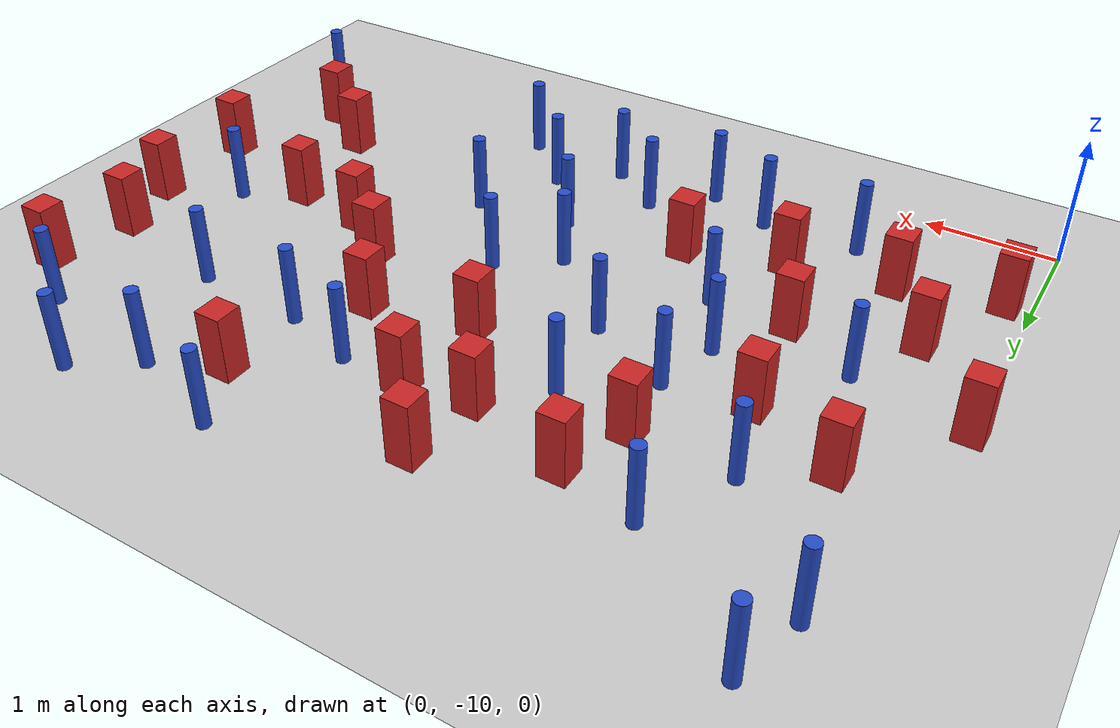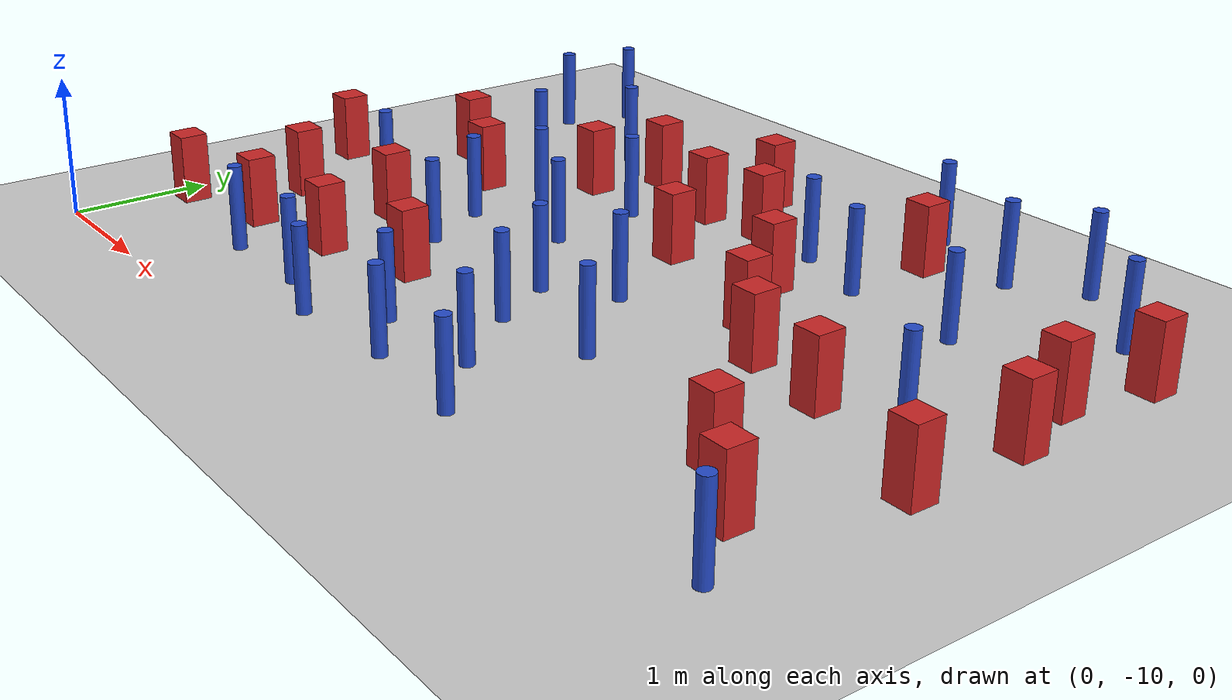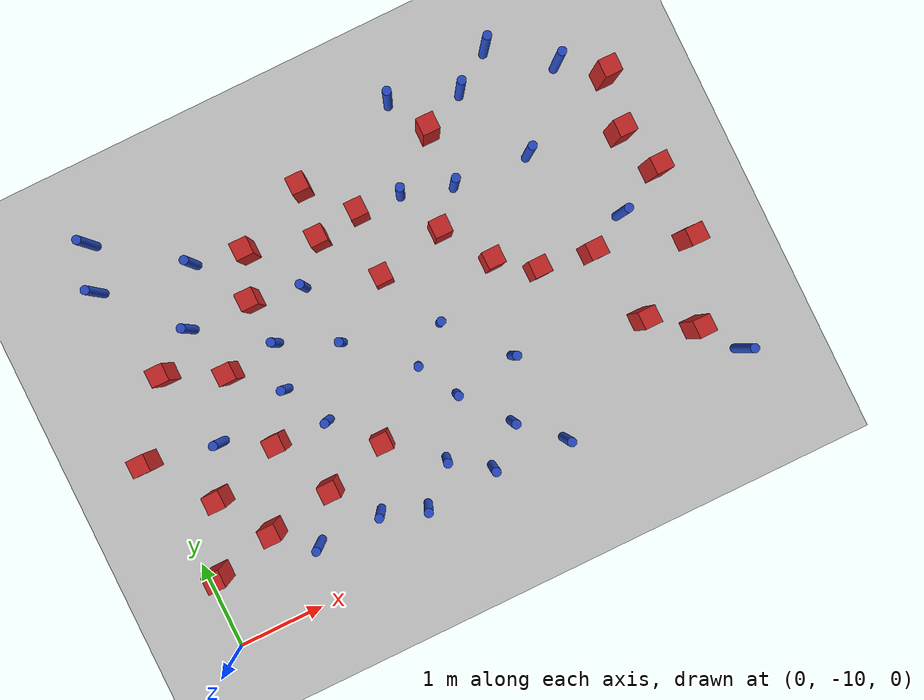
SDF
<sdf version="1.6">
 <world name="default">
  <model name="ground_plane">
   <static>1</static>
   <link name="link">
    <collision name="collision">
     <geometry><plane><normal>0 0 1</normal><size>100 100</size></plane></geometry>
     <surface><friction><ode><mu>100</mu><mu2>50</mu2></ode></friction></surface>
    </collision>
    <visual name="visual">
     <cast_shadows>0</cast_shadows>
     <geometry><plane><normal>0 0 1</normal><size>100 100</size></plane></geometry>
     <material>
      <ambient>1.0 1.0 1.0 1.0</ambient>
      <diffuse>0.8 0.8 0.8 1.0</diffuse>
      <specular>0.01 0.01 0.01 1.000000</specular>
     </material>
    </visual>
   </link>
  </model>
  <model name="square_post_obstacle7">
   <static>true</static>
   <pose>3.2556750321 -6.27537954288 -6.11067671241e-07 -5.50515727128e-06 -8.79689657224e-07 2.37013304536e-05</pose>
   <link name="link">
    <pose>0 0 0.25 0 -0 0</pose>
    <inertial>
     <mass>100</mass>
     <inertia>
      <ixx>0.166667</ixx>
      <ixy>0</ixy>
      <ixz>0</ixz>
      <iyy>0.166667</iyy>
      <iyz>0</iyz>
      <izz>0.166667</izz>
     </inertia>
    </inertial>
    <collision name="collision"><geometry><box><size>.2 .2 .5</size></box></geometry></collision>
    <visual name="visual">
     <geometry><box><size>.2 .2 .5</size></box></geometry>
     <material>
      <script><name>Gazebo/Red</name><uri>file://media/materials/scripts/gazebo.material</uri></script>
     </material>
    </visual>
   </link>
  </model>
  <model name="square_post_obstacle10">
   <static>true</static>
   <pose>6.32868239896 -6.0934810829 -6.11067671241e-07 -5.50515727128e-06 -8.79689657224e-07 2.37013304536e-05</pose>
   <link name="link">
    <pose>0 0 0.25 0 -0 0</pose>
    <inertial>
     <mass>100</mass>
     <inertia>
      <ixx>0.166667</ixx>
      <ixy>0</ixy>
      <ixz>0</ixz>
      <iyy>0.166667</iyy>
      <iyz>0</iyz>
      <izz>0.166667</izz>
     </inertia>
    </inertial>
    <collision name="collision"><geometry><box><size>.2 .2 .5</size></box></geometry></collision>
    <visual name="visual">
     <geometry><box><size>.2 .2 .5</size></box></geometry>
     <material>
      <script><name>Gazebo/Red</name><uri>file://media/materials/scripts/gazebo.material</uri></script>
     </material>
    </visual>
   </link>
  </model>
  <model name="pole_obstacle10">
   <static>true</static>
   <pose>4.07829547664 -5.33456093465 -9.47619616065e-06 5.49618799737e-07 2.36310414037e-07 -1.55090534814e-07</pose>
   <link name="link">
    <pose>0 0 0.3 0 -0 0</pose>
    <inertial>
     <mass>1</mass>
     <inertia><ixx>0.145833</ixx><ixy>0</ixy><ixz>0</ixz><iyy>0.145833</iyy><iyz>0</iyz><izz>0.125</izz></inertia>
    </inertial>
    <collision name="collision">
     <geometry><cylinder><radius>0.05</radius><length>.6</length></cylinder></geometry>
    </collision>
    <visual name="visual">
     <geometry><cylinder><radius>0.05</radius><length>.6</length></cylinder></geometry>
     <material>
      <script><name>Gazebo/Blue</name><uri>file://media/materials/scripts/gazebo.material</uri></script>
     </material>
    </visual>
   </link>
  </model>
  <model name="square_post_obstacle21">
   <static>true</static>
   <pose>1.37357863309 -8.14754635639 -6.11067671241e-07 -5.50515727128e-06 -8.79689657224e-07 2.37013304536e-05</pose>
   <link name="link">
    <pose>0 0 0.25 0 -0 0</pose>
    <inertial>
     <mass>100</mass>
     <inertia>
      <ixx>0.166667</ixx>
      <ixy>0</ixy>
      <ixz>0</ixz>
      <iyy>0.166667</iyy>
      <iyz>0</iyz>
      <izz>0.166667</izz>
     </inertia>
    </inertial>
    <collision name="collision"><geometry><box><size>.2 .2 .5</size></box></geometry></collision>
    <visual name="visual">
     <geometry><box><size>.2 .2 .5</size></box></geometry>
     <material>
      <script><name>Gazebo/Red</name><uri>file://media/materials/scripts/gazebo.material</uri></script>
     </material>
    </visual>
   </link>
  </model>
  <model name="square_post_obstacle22">
   <static>true</static>
   <pose>1.98280074406 -6.12882178405 -6.11067671241e-07 -5.50515727128e-06 -8.79689657224e-07 2.37013304536e-05</pose>
   <link name="link">
    <pose>0 0 0.25 0 -0 0</pose>
    <inertial>
     <mass>100</mass>
     <inertia>
      <ixx>0.166667</ixx>
      <ixy>0</ixy>
      <ixz>0</ixz>
      <iyy>0.166667</iyy>
      <iyz>0</iyz>
      <izz>0.166667</izz>
     </inertia>
    </inertial>
    <collision name="collision"><geometry><box><size>.2 .2 .5</size></box></geometry></collision>
    <visual name="visual">
     <geometry><box><size>.2 .2 .5</size></box></geometry>
     <material>
      <script><name>Gazebo/Red</name><uri>file://media/materials/scripts/gazebo.material</uri></script>
     </material>
    </visual>
   </link>
  </model>
  <model name="square_post_obstacle24">
   <static>true</static>
   <pose>2.41187831483 -8.62929557495 -6.11067671241e-07 -5.50515727128e-06 -8.79689657224e-07 2.37013304536e-05</pose>
   <link name="link">
    <pose>0 0 0.25 0 -0 0</pose>
    <inertial>
     <mass>100</mass>
     <inertia>
      <ixx>0.166667</ixx>
      <ixy>0</ixy>
      <ixz>0</ixz>
      <iyy>0.166667</iyy>
      <iyz>0</iyz>
      <izz>0.166667</izz>
     </inertia>
    </inertial>
    <collision name="collision"><geometry><box><size>.2 .2 .5</size></box></geometry></collision>
    <visual name="visual">
     <geometry><box><size>.2 .2 .5</size></box></geometry>
     <material>
      <script><name>Gazebo/Red</name><uri>file://media/materials/scripts/gazebo.material</uri></script>
     </material>
    </visual>
   </link>
  </model>
  <model name="pole_obstacle21">
   <static>true</static>
   <pose>4.21502007198 -9.47320602144 -9.47619616065e-06 5.49618799737e-07 2.36310414065e-07 -1.55090534796e-07</pose>
   <link name="link">
    <pose>0 0 0.3 0 -0 0</pose>
    <inertial>
     <mass>1</mass>
     <inertia><ixx>0.145833</ixx><ixy>0</ixy><ixz>0</ixz><iyy>0.145833</iyy><iyz>0</iyz><izz>0.125</izz></inertia>
    </inertial>
    <collision name="collision">
     <geometry><cylinder><radius>0.05</radius><length>.6</length></cylinder></geometry>
    </collision>
    <visual name="visual">
     <geometry><cylinder><radius>0.05</radius><length>.6</length></cylinder></geometry>
     <material>
      <script><name>Gazebo/Blue</name><uri>file://media/materials/scripts/gazebo.material</uri></script>
     </material>
    </visual>
   </link>
  </model>
  <model name="pole_obstacle24">
   <static>true</static>
   <pose>3.36344064389 -8.52415347495 -9.4761961606e-06 5.49618799729e-07 2.36310414e-07 -1.55090534824e-07</pose>
   <link name="link">
    <pose>0 0 0.3 0 -0 0</pose>
    <inertial>
     <mass>1</mass>
     <inertia><ixx>0.145833</ixx><ixy>0</ixy><ixz>0</ixz><iyy>0.145833</iyy><iyz>0</iyz><izz>0.125</izz></inertia>
    </inertial>
    <collision name="collision">
     <geometry><cylinder><radius>0.05</radius><length>.6</length></cylinder></geometry>
    </collision>
    <visual name="visual">
     <geometry><cylinder><radius>0.05</radius><length>.6</length></cylinder></geometry>
     <material>
      <script><name>Gazebo/Blue</name><uri>file://media/materials/scripts/gazebo.material</uri></script>
     </material>
    </visual>
   </link>
  </model>
  <model name="pole_obstacle26">
   <static>true</static>
   <pose>1.84589043679 -7.16416930693 -9.47619616065e-06 5.49618799737e-07 2.36310414061e-07 -1.550905348e-07</pose>
   <link name="link">
    <pose>0 0 0.3 0 -0 0</pose>
    <inertial>
     <mass>1</mass>
     <inertia><ixx>0.145833</ixx><ixy>0</ixy><ixz>0</ixz><iyy>0.145833</iyy><iyz>0</iyz><izz>0.125</izz></inertia>
    </inertial>
    <collision name="collision">
     <geometry><cylinder><radius>0.05</radius><length>.6</length></cylinder></geometry>
    </collision>
    <visual name="visual">
     <geometry><cylinder><radius>0.05</radius><length>.6</length></cylinder></geometry>
     <material>
      <script><name>Gazebo/Blue</name><uri>file://media/materials/scripts/gazebo.material</uri></script>
     </material>
    </visual>
   </link>
  </model>
  <model name="square_post_obstacle34">
   <static>true</static>
   <pose>6.37472282156 -8.09165390503 -6.11067671241e-07 -5.50515727128e-06 -8.79689657224e-07 2.37013304536e-05</pose>
   <link name="link">
    <pose>0 0 0.25 0 -0 0</pose>
    <inertial>
     <mass>100</mass>
     <inertia>
      <ixx>0.166667</ixx>
      <ixy>0</ixy>
      <ixz>0</ixz>
      <iyy>0.166667</iyy>
      <iyz>0</iyz>
      <izz>0.166667</izz>
     </inertia>
    </inertial>
    <collision name="collision"><geometry><box><size>.2 .2 .5</size></box></geometry></collision>
    <visual name="visual">
     <geometry><box><size>.2 .2 .5</size></box></geometry>
     <material>
      <script><name>Gazebo/Red</name><uri>file://media/materials/scripts/gazebo.material</uri></script>
     </material>
    </visual>
   </link>
  </model>
  <model name="pole_obstacle33">
   <static>true</static>
   <pose>2.38203223135 -6.74965651548 -9.47619616065e-06 5.49618799738e-07 2.3631041406e-07 -1.55090534801e-07</pose>
   <link name="link">
    <pose>0 0 0.3 0 -0 0</pose>
    <inertial>
     <mass>1</mass>
     <inertia><ixx>0.145833</ixx><ixy>0</ixy><ixz>0</ixz><iyy>0.145833</iyy><iyz>0</iyz><izz>0.125</izz></inertia>
    </inertial>
    <collision name="collision">
     <geometry><cylinder><radius>0.05</radius><length>.6</length></cylinder></geometry>
    </collision>
    <visual name="visual">
     <geometry><cylinder><radius>0.05</radius><length>.6</length></cylinder></geometry>
     <material>
      <script><name>Gazebo/Blue</name><uri>file://media/materials/scripts/gazebo.material</uri></script>
     </material>
    </visual>
   </link>
  </model>
  <model name="square_post_obstacle35">
   <static>true</static>
   <pose>0.0028731617032 -7.72094351768 -6.11067671241e-07 -5.50515727128e-06 -8.79689657224e-07 2.37013304536e-05</pose>
   <link name="link">
    <pose>0 0 0.25 0 -0 0</pose>
    <inertial>
     <mass>100</mass>
     <inertia>
      <ixx>0.166667</ixx>
      <ixy>0</ixy>
      <ixz>0</ixz>
      <iyy>0.166667</iyy>
      <iyz>0</iyz>
      <izz>0.166667</izz>
     </inertia>
    </inertial>
    <collision name="collision"><geometry><box><size>.2 .2 .5</size></box></geometry></collision>
    <visual name="visual">
     <geometry><box><size>.2 .2 .5</size></box></geometry>
     <material>
      <script><name>Gazebo/Red</name><uri>file://media/materials/scripts/gazebo.material</uri></script>
     </material>
    </visual>
   </link>
  </model>
  <model name="pole_obstacle34">
   <static>true</static>
   <pose>5.27503512323 -5.27325205544 -9.47619616065e-06 5.49618799737e-07 2.36310414037e-07 -1.55090534814e-07</pose>
   <link name="link">
    <pose>0 0 0.3 0 -0 0</pose>
    <inertial>
     <mass>1</mass>
     <inertia><ixx>0.145833</ixx><ixy>0</ixy><ixz>0</ixz><iyy>0.145833</iyy><iyz>0</iyz><izz>0.125</izz></inertia>
    </inertial>
    <collision name="collision">
     <geometry><cylinder><radius>0.05</radius><length>.6</length></cylinder></geometry>
    </collision>
    <visual name="visual">
     <geometry><cylinder><radius>0.05</radius><length>.6</length></cylinder></geometry>
     <material>
      <script><name>Gazebo/Blue</name><uri>file://media/materials/scripts/gazebo.material</uri></script>
     </material>
    </visual>
   </link>
  </model>
  <model name="pole_obstacle35">
   <static>true</static>
   <pose>2.55076849958 -9.48211692184 -9.4761961606e-06 5.49618799729e-07 2.36310414e-07 -1.55090534824e-07</pose>
   <link name="link">
    <pose>0 0 0.3 0 -0 0</pose>
    <inertial>
     <mass>1</mass>
     <inertia><ixx>0.145833</ixx><ixy>0</ixy><ixz>0</ixz><iyy>0.145833</iyy><iyz>0</iyz><izz>0.125</izz></inertia>
    </inertial>
    <collision name="collision">
     <geometry><cylinder><radius>0.05</radius><length>.6</length></cylinder></geometry>
    </collision>
    <visual name="visual">
     <geometry><cylinder><radius>0.05</radius><length>.6</length></cylinder></geometry>
     <material>
      <script><name>Gazebo/Blue</name><uri>file://media/materials/scripts/gazebo.material</uri></script>
     </material>
    </visual>
   </link>
  </model>
  <model name="pole_obstacle45">
   <static>true</static>
   <pose>0.492167576789 -5.31716671438 -9.47619616065e-06 5.49618799737e-07 2.36310414066e-07 -1.55090534795e-07</pose>
   <link name="link">
    <pose>0 0 0.3 0 -0 0</pose>
    <inertial>
     <mass>1</mass>
     <inertia><ixx>0.145833</ixx><ixy>0</ixy><ixz>0</ixz><iyy>0.145833</iyy><iyz>0</iyz><izz>0.125</izz></inertia>
    </inertial>
    <collision name="collision">
     <geometry><cylinder><radius>0.05</radius><length>.6</length></cylinder></geometry>
    </collision>
    <visual name="visual">
     <geometry><cylinder><radius>0.05</radius><length>.6</length></cylinder></geometry>
     <material>
      <script><name>Gazebo/Blue</name><uri>file://media/materials/scripts/gazebo.material</uri></script>
     </material>
    </visual>
   </link>
  </model>
  <model name="square_post_obstacle46">
   <static>true</static>
   <pose>6.19663565704 -6.72900131896 -6.11067671241e-07 -5.50515727128e-06 -8.79689657224e-07 2.37013304536e-05</pose>
   <link name="link">
    <pose>0 0 0.25 0 -0 0</pose>
    <inertial>
     <mass>100</mass>
     <inertia>
      <ixx>0.166667</ixx>
      <ixy>0</ixy>
      <ixz>0</ixz>
      <iyy>0.166667</iyy>
      <iyz>0</iyz>
      <izz>0.166667</izz>
     </inertia>
    </inertial>
    <collision name="collision"><geometry><box><size>.2 .2 .5</size></box></geometry></collision>
    <visual name="visual">
     <geometry><box><size>.2 .2 .5</size></box></geometry>
     <material>
      <script><name>Gazebo/Red</name><uri>file://media/materials/scripts/gazebo.material</uri></script>
     </material>
    </visual>
   </link>
  </model>
  <model name="square_post_obstacle47">
   <static>true</static>
   <pose>5.54192508522 -8.66739463814 -6.11067671241e-07 -5.50515727128e-06 -8.79689657224e-07 2.37013304536e-05</pose>
   <link name="link">
    <pose>0 0 0.25 0 -0 0</pose>
    <inertial>
     <mass>100</mass>
     <inertia>
      <ixx>0.166667</ixx>
      <ixy>0</ixy>
      <ixz>0</ixz>
      <iyy>0.166667</iyy>
      <iyz>0</iyz>
      <izz>0.166667</izz>
     </inertia>
    </inertial>
    <collision name="collision"><geometry><box><size>.2 .2 .5</size></box></geometry></collision>
    <visual name="visual">
     <geometry><box><size>.2 .2 .5</size></box></geometry>
     <material>
      <script><name>Gazebo/Red</name><uri>file://media/materials/scripts/gazebo.material</uri></script>
     </material>
    </visual>
   </link>
  </model>
  <model name="square_post_obstacle51">
   <static>true</static>
   <pose>6.02140081507 -9.0024088682 -6.11067671241e-07 -5.50515727128e-06 -8.79689657224e-07 2.37013304536e-05</pose>
   <link name="link">
    <pose>0 0 0.25 0 -0 0</pose>
    <inertial>
     <mass>100</mass>
     <inertia>
      <ixx>0.166667</ixx>
      <ixy>0</ixy>
      <ixz>0</ixz>
      <iyy>0.166667</iyy>
      <iyz>0</iyz>
      <izz>0.166667</izz>
     </inertia>
    </inertial>
    <collision name="collision"><geometry><box><size>.2 .2 .5</size></box></geometry></collision>
    <visual name="visual">
     <geometry><box><size>.2 .2 .5</size></box></geometry>
     <material>
      <script><name>Gazebo/Red</name><uri>file://media/materials/scripts/gazebo.material</uri></script>
     </material>
    </visual>
   </link>
  </model>
  <model name="pole_obstacle57">
   <static>true</static>
   <pose>2.9558584176 -9.10594040791 -9.4761961606e-06 5.49618799729e-07 2.36310414e-07 -1.55090534824e-07</pose>
   <link name="link">
    <pose>0 0 0.3 0 -0 0</pose>
    <inertial>
     <mass>1</mass>
     <inertia><ixx>0.145833</ixx><ixy>0</ixy><ixz>0</ixz><iyy>0.145833</iyy><iyz>0</iyz><izz>0.125</izz></inertia>
    </inertial>
    <collision name="collision">
     <geometry><cylinder><radius>0.05</radius><length>.6</length></cylinder></geometry>
    </collision>
    <visual name="visual">
     <geometry><cylinder><radius>0.05</radius><length>.6</length></cylinder></geometry>
     <material>
      <script><name>Gazebo/Blue</name><uri>file://media/materials/scripts/gazebo.material</uri></script>
     </material>
    </visual>
   </link>
  </model>
  <model name="pole_obstacle60">
   <static>true</static>
   <pose>3.53972612429 -7.7447280248 -9.47619616065e-06 5.49618799738e-07 2.3631041406e-07 -1.55090534801e-07</pose>
   <link name="link">
    <pose>0 0 0.3 0 -0 0</pose>
    <inertial>
     <mass>1</mass>
     <inertia><ixx>0.145833</ixx><ixy>0</ixy><ixz>0</ixz><iyy>0.145833</iyy><iyz>0</iyz><izz>0.125</izz></inertia>
    </inertial>
    <collision name="collision">
     <geometry><cylinder><radius>0.05</radius><length>.6</length></cylinder></geometry>
    </collision>
    <visual name="visual">
     <geometry><cylinder><radius>0.05</radius><length>.6</length></cylinder></geometry>
     <material>
      <script><name>Gazebo/Blue</name><uri>file://media/materials/scripts/gazebo.material</uri></script>
     </material>
    </visual>
   </link>
  </model>
  <model name="pole_obstacle68">
   <static>true</static>
   <pose>1.40591479882 -5.99600581124 -9.47619616065e-06 5.49618799737e-07 2.36310414061e-07 -1.550905348e-07</pose>
   <link name="link">
    <pose>0 0 0.3 0 -0 0</pose>
    <inertial>
     <mass>1</mass>
     <inertia><ixx>0.145833</ixx><ixy>0</ixy><ixz>0</ixz><iyy>0.145833</iyy><iyz>0</iyz><izz>0.125</izz></inertia>
    </inertial>
    <collision name="collision">
     <geometry><cylinder><radius>0.05</radius><length>.6</length></cylinder></geometry>
    </collision>
    <visual name="visual">
     <geometry><cylinder><radius>0.05</radius><length>.6</length></cylinder></geometry>
     <material>
      <script><name>Gazebo/Blue</name><uri>file://media/materials/scripts/gazebo.material</uri></script>
     </material>
    </visual>
   </link>
  </model>
  <model name="square_post_obstacle76">
   <static>true</static>
   <pose>2.81483204514 -5.76514942057 -6.11067671241e-07 -5.50515727128e-06 -8.79689657224e-07 2.37013304536e-05</pose>
   <link name="link">
    <pose>0 0 0.25 0 -0 0</pose>
    <inertial>
     <mass>100</mass>
     <inertia>
      <ixx>0.166667</ixx>
      <ixy>0</ixy>
      <ixz>0</ixz>
      <iyy>0.166667</iyy>
      <iyz>0</iyz>
      <izz>0.166667</izz>
     </inertia>
    </inertial>
    <collision name="collision"><geometry><box><size>.2 .2 .5</size></box></geometry></collision>
    <visual name="visual">
     <geometry><box><size>.2 .2 .5</size></box></geometry>
     <material>
      <script><name>Gazebo/Red</name><uri>file://media/materials/scripts/gazebo.material</uri></script>
     </material>
    </visual>
   </link>
  </model>
  <model name="pole_obstacle73">
   <static>true</static>
   <pose>4.33057860488 -6.46650765944 -9.47619616065e-06 5.49618799737e-07 2.36310414037e-07 -1.55090534814e-07</pose>
   <link name="link">
    <pose>0 0 0.3 0 -0 0</pose>
    <inertial>
     <mass>1</mass>
     <inertia><ixx>0.145833</ixx><ixy>0</ixy><ixz>0</ixz><iyy>0.145833</iyy><iyz>0</iyz><izz>0.125</izz></inertia>
    </inertial>
    <collision name="collision">
     <geometry><cylinder><radius>0.05</radius><length>.6</length></cylinder></geometry>
    </collision>
    <visual name="visual">
     <geometry><cylinder><radius>0.05</radius><length>.6</length></cylinder></geometry>
     <material>
      <script><name>Gazebo/Blue</name><uri>file://media/materials/scripts/gazebo.material</uri></script>
     </material>
    </visual>
   </link>
  </model>
  <model name="pole_obstacle78">
   <static>true</static>
   <pose>0.832472949337 -7.87429215795 -9.47619616065e-06 5.49618799737e-07 2.36310414065e-07 -1.55090534796e-07</pose>
   <link name="link">
    <pose>0 0 0.3 0 -0 0</pose>
    <inertial>
     <mass>1</mass>
     <inertia><ixx>0.145833</ixx><ixy>0</ixy><ixz>0</ixz><iyy>0.145833</iyy><iyz>0</iyz><izz>0.125</izz></inertia>
    </inertial>
    <collision name="collision">
     <geometry><cylinder><radius>0.05</radius><length>.6</length></cylinder></geometry>
    </collision>
    <visual name="visual">
     <geometry><cylinder><radius>0.05</radius><length>.6</length></cylinder></geometry>
     <material>
      <script><name>Gazebo/Blue</name><uri>file://media/materials/scripts/gazebo.material</uri></script>
     </material>
    </visual>
   </link>
  </model>
  <model name="square_post_obstacle77">
   <static>true</static>
   <pose>0.180615510992 -9.1697672979 -6.11067671241e-07 -5.50515727128e-06 -8.79689657224e-07 2.37013304536e-05</pose>
   <link name="link">
    <pose>0 0 0.25 0 -0 0</pose>
    <inertial>
     <mass>100</mass>
     <inertia>
      <ixx>0.166667</ixx>
      <ixy>0</ixy>
      <ixz>0</ixz>
      <iyy>0.166667</iyy>
      <iyz>0</iyz>
      <izz>0.166667</izz>
     </inertia>
    </inertial>
    <collision name="collision"><geometry><box><size>.2 .2 .5</size></box></geometry></collision>
    <visual name="visual">
     <geometry><box><size>.2 .2 .5</size></box></geometry>
     <material>
      <script><name>Gazebo/Red</name><uri>file://media/materials/scripts/gazebo.material</uri></script>
     </material>
    </visual>
   </link>
  </model>
  <model name="square_post_obstacle78">
   <static>true</static>
   <pose>0.917853561715 -8.98584795032 -6.11067671241e-07 -5.50515727128e-06 -8.79689657224e-07 2.37013304536e-05</pose>
   <link name="link">
    <pose>0 0 0.25 0 -0 0</pose>
    <inertial>
     <mass>100</mass>
     <inertia>
      <ixx>0.166667</ixx>
      <ixy>0</ixy>
      <ixz>0</ixz>
      <iyy>0.166667</iyy>
      <iyz>0</iyz>
      <izz>0.166667</izz>
     </inertia>
    </inertial>
    <collision name="collision"><geometry><box><size>.2 .2 .5</size></box></geometry></collision>
    <visual name="visual">
     <geometry><box><size>.2 .2 .5</size></box></geometry>
     <material>
      <script><name>Gazebo/Red</name><uri>file://media/materials/scripts/gazebo.material</uri></script>
     </material>
    </visual>
   </link>
  </model>
  <model name="square_post_obstacle81">
   <static>true</static>
   <pose>2.7489969272 -6.34819657556 -6.11067671241e-07 -5.50515727128e-06 -8.79689657224e-07 2.37013304536e-05</pose>
   <link name="link">
    <pose>0 0 0.25 0 -0 0</pose>
    <inertial>
     <mass>100</mass>
     <inertia>
      <ixx>0.166667</ixx>
      <ixy>0</ixy>
      <ixz>0</ixz>
      <iyy>0.166667</iyy>
      <iyz>0</iyz>
      <izz>0.166667</izz>
     </inertia>
    </inertial>
    <collision name="collision"><geometry><box><size>.2 .2 .5</size></box></geometry></collision>
    <visual name="visual">
     <geometry><box><size>.2 .2 .5</size></box></geometry>
     <material>
      <script><name>Gazebo/Red</name><uri>file://media/materials/scripts/gazebo.material</uri></script>
     </material>
    </visual>
   </link>
  </model>
  <model name="pole_obstacle90">
   <static>true</static>
   <pose>3.76214299494 -6.29759670727 -9.47619616065e-06 5.49618799738e-07 2.3631041406e-07 -1.55090534801e-07</pose>
   <link name="link">
    <pose>0 0 0.3 0 -0 0</pose>
    <inertial>
     <mass>1</mass>
     <inertia><ixx>0.145833</ixx><ixy>0</ixy><ixz>0</ixz><iyy>0.145833</iyy><iyz>0</iyz><izz>0.125</izz></inertia>
    </inertial>
    <collision name="collision">
     <geometry><cylinder><radius>0.05</radius><length>.6</length></cylinder></geometry>
    </collision>
    <visual name="visual">
     <geometry><cylinder><radius>0.05</radius><length>.6</length></cylinder></geometry>
     <material>
      <script><name>Gazebo/Blue</name><uri>file://media/materials/scripts/gazebo.material</uri></script>
     </material>
    </visual>
   </link>
  </model>
  <model name="pole_obstacle91">
   <static>true</static>
   <pose>5.90648013939 -5.76263241075 -9.47619616065e-06 5.49618799737e-07 2.36310414037e-07 -1.55090534814e-07</pose>
   <link name="link">
    <pose>0 0 0.3 0 -0 0</pose>
    <inertial>
     <mass>1</mass>
     <inertia><ixx>0.145833</ixx><ixy>0</ixy><ixz>0</ixz><iyy>0.145833</iyy><iyz>0</iyz><izz>0.125</izz></inertia>
    </inertial>
    <collision name="collision">
     <geometry><cylinder><radius>0.05</radius><length>.6</length></cylinder></geometry>
    </collision>
    <visual name="visual">
     <geometry><cylinder><radius>0.05</radius><length>.6</length></cylinder></geometry>
     <material>
      <script><name>Gazebo/Blue</name><uri>file://media/materials/scripts/gazebo.material</uri></script>
     </material>
    </visual>
   </link>
  </model>
  <model name="pole_obstacle94">
   <static>true</static>
   <pose>3.11879384005 -8.06487310881 -9.4761961606e-06 5.49618799729e-07 2.36310414e-07 -1.55090534824e-07</pose>
   <link name="link">
    <pose>0 0 0.3 0 -0 0</pose>
    <inertial>
     <mass>1</mass>
     <inertia><ixx>0.145833</ixx><ixy>0</ixy><ixz>0</ixz><iyy>0.145833</iyy><iyz>0</iyz><izz>0.125</izz></inertia>
    </inertial>
    <collision name="collision">
     <geometry><cylinder><radius>0.05</radius><length>.6</length></cylinder></geometry>
    </collision>
    <visual name="visual">
     <geometry><cylinder><radius>0.05</radius><length>.6</length></cylinder></geometry>
     <material>
      <script><name>Gazebo/Blue</name><uri>file://media/materials/scripts/gazebo.material</uri></script>
     </material>
    </visual>
   </link>
  </model>
  <model name="square_post_obstacle86">
   <static>true</static>
   <pose>5.35759103302 -7.77073187284 -6.11067671241e-07 -5.50515727128e-06 -8.79689657224e-07 2.37013304536e-05</pose>
   <link name="link">
    <pose>0 0 0.25 0 -0 0</pose>
    <inertial>
     <mass>100</mass>
     <inertia>
      <ixx>0.166667</ixx>
      <ixy>0</ixy>
      <ixz>0</ixz>
      <iyy>0.166667</iyy>
      <iyz>0</iyz>
      <izz>0.166667</izz>
     </inertia>
    </inertial>
    <collision name="collision"><geometry><box><size>.2 .2 .5</size></box></geometry></collision>
    <visual name="visual">
     <geometry><box><size>.2 .2 .5</size></box></geometry>
     <material>
      <script><name>Gazebo/Red</name><uri>file://media/materials/scripts/gazebo.material</uri></script>
     </material>
    </visual>
   </link>
  </model>
  <model name="pole_obstacle111">
   <static>true</static>
   <pose>1.97968675255 -8.17006901145 -9.47619616065e-06 5.49618799737e-07 2.3631041405e-07 -1.55090534805e-07</pose>
   <link name="link">
    <pose>0 0 0.3 0 -0 0</pose>
    <inertial>
     <mass>1</mass>
     <inertia><ixx>0.145833</ixx><ixy>0</ixy><ixz>0</ixz><iyy>0.145833</iyy><iyz>0</iyz><izz>0.125</izz></inertia>
    </inertial>
    <collision name="collision">
     <geometry><cylinder><radius>0.05</radius><length>.6</length></cylinder></geometry>
    </collision>
    <visual name="visual">
     <geometry><cylinder><radius>0.05</radius><length>.6</length></cylinder></geometry>
     <material>
      <script><name>Gazebo/Blue</name><uri>file://media/materials/scripts/gazebo.material</uri></script>
     </material>
    </visual>
   </link>
  </model>
  <model name="square_post_obstacle99">
   <static>true</static>
   <pose>3.97649930458 -6.83899806863 -6.11067671241e-07 -5.50515727128e-06 -8.79689657224e-07 2.37013304536e-05</pose>
   <link name="link">
    <pose>0 0 0.25 0 -0 0</pose>
    <inertial>
     <mass>100</mass>
     <inertia>
      <ixx>0.166667</ixx>
      <ixy>0</ixy>
      <ixz>0</ixz>
      <iyy>0.166667</iyy>
      <iyz>0</iyz>
      <izz>0.166667</izz>
     </inertia>
    </inertial>
    <collision name="collision"><geometry><box><size>.2 .2 .5</size></box></geometry></collision>
    <visual name="visual">
     <geometry><box><size>.2 .2 .5</size></box></geometry>
     <material>
      <script><name>Gazebo/Red</name><uri>file://media/materials/scripts/gazebo.material</uri></script>
     </material>
    </visual>
   </link>
  </model>
  <model name="square_post_obstacle104">
   <static>true</static>
   <pose>0.545935778839 -8.41289533238 -6.11067671241e-07 -5.50515727128e-06 -8.79689657224e-07 2.37013304536e-05</pose>
   <link name="link">
    <pose>0 0 0.25 0 -0 0</pose>
    <inertial>
     <mass>100</mass>
     <inertia>
      <ixx>0.166667</ixx>
      <ixy>0</ixy>
      <ixz>0</ixz>
      <iyy>0.166667</iyy>
      <iyz>0</iyz>
      <izz>0.166667</izz>
     </inertia>
    </inertial>
    <collision name="collision"><geometry><box><size>.2 .2 .5</size></box></geometry></collision>
    <visual name="visual">
     <geometry><box><size>.2 .2 .5</size></box></geometry>
     <material>
      <script><name>Gazebo/Red</name><uri>file://media/materials/scripts/gazebo.material</uri></script>
     </material>
    </visual>
   </link>
  </model>
  <model name="square_post_obstacle110">
   <static>true</static>
   <pose>6.37052671702 -7.25068092148 -6.11067671241e-07 -5.50515727128e-06 -8.79689657224e-07 2.37013304536e-05</pose>
   <link name="link">
    <pose>0 0 0.25 0 -0 0</pose>
    <inertial>
     <mass>100</mass>
     <inertia>
      <ixx>0.166667</ixx>
      <ixy>0</ixy>
      <ixz>0</ixz>
      <iyy>0.166667</iyy>
      <iyz>0</iyz>
      <izz>0.166667</izz>
     </inertia>
    </inertial>
    <collision name="collision"><geometry><box><size>.2 .2 .5</size></box></geometry></collision>
    <visual name="visual">
     <geometry><box><size>.2 .2 .5</size></box></geometry>
     <material>
      <script><name>Gazebo/Red</name><uri>file://media/materials/scripts/gazebo.material</uri></script>
     </material>
    </visual>
   </link>
  </model>
  <model name="pole_obstacle120">
   <static>true</static>
   <pose>2.483875713 -7.4697033346 -9.47619616065e-06 5.49618799738e-07 2.3631041406e-07 -1.55090534801e-07</pose>
   <link name="link">
    <pose>0 0 0.3 0 -0 0</pose>
    <inertial>
     <mass>1</mass>
     <inertia><ixx>0.145833</ixx><ixy>0</ixy><ixz>0</ixz><iyy>0.145833</iyy><iyz>0</iyz><izz>0.125</izz></inertia>
    </inertial>
    <collision name="collision">
     <geometry><cylinder><radius>0.05</radius><length>.6</length></cylinder></geometry>
    </collision>
    <visual name="visual">
     <geometry><cylinder><radius>0.05</radius><length>.6</length></cylinder></geometry>
     <material>
      <script><name>Gazebo/Blue</name><uri>file://media/materials/scripts/gazebo.material</uri></script>
     </material>
    </visual>
   </link>
  </model>
  <model name="pole_obstacle133">
   <static>true</static>
   <pose>5.19884673945 -6.51333464487 -9.47619616065e-06 5.49618799737e-07 2.36310414037e-07 -1.55090534814e-07</pose>
   <link name="link">
    <pose>0 0 0.3 0 -0 0</pose>
    <inertial>
     <mass>1</mass>
     <inertia><ixx>0.145833</ixx><ixy>0</ixy><ixz>0</ixz><iyy>0.145833</iyy><iyz>0</iyz><izz>0.125</izz></inertia>
    </inertial>
    <collision name="collision">
     <geometry><cylinder><radius>0.05</radius><length>.6</length></cylinder></geometry>
    </collision>
    <visual name="visual">
     <geometry><cylinder><radius>0.05</radius><length>.6</length></cylinder></geometry>
     <material>
      <script><name>Gazebo/Blue</name><uri>file://media/materials/scripts/gazebo.material</uri></script>
     </material>
    </visual>
   </link>
  </model>
  <model name="square_post_obstacle115">
   <static>true</static>
   <pose>0.596705735067 -6.9451362715 -6.11067671241e-07 -5.50515727128e-06 -8.79689657224e-07 2.37013304536e-05</pose>
   <link name="link">
    <pose>0 0 0.25 0 -0 0</pose>
    <inertial>
     <mass>100</mass>
     <inertia>
      <ixx>0.166667</ixx>
      <ixy>0</ixy>
      <ixz>0</ixz>
      <iyy>0.166667</iyy>
      <iyz>0</iyz>
      <izz>0.166667</izz>
     </inertia>
    </inertial>
    <collision name="collision"><geometry><box><size>.2 .2 .5</size></box></geometry></collision>
    <visual name="visual">
     <geometry><box><size>.2 .2 .5</size></box></geometry>
     <material>
      <script><name>Gazebo/Red</name><uri>file://media/materials/scripts/gazebo.material</uri></script>
     </material>
    </visual>
   </link>
  </model>
  <model name="square_post_obstacle129">
   <static>true</static>
   <pose>4.33837070839 -7.3774406545 -6.11067671241e-07 -5.50515727128e-06 -8.79689657224e-07 2.37013304536e-05</pose>
   <link name="link">
    <pose>0 0 0.25 0 -0 0</pose>
    <inertial>
     <mass>100</mass>
     <inertia>
      <ixx>0.166667</ixx>
      <ixy>0</ixy>
      <ixz>0</ixz>
      <iyy>0.166667</iyy>
      <iyz>0</iyz>
      <izz>0.166667</izz>
     </inertia>
    </inertial>
    <collision name="collision"><geometry><box><size>.2 .2 .5</size></box></geometry></collision>
    <visual name="visual">
     <geometry><box><size>.2 .2 .5</size></box></geometry>
     <material>
      <script><name>Gazebo/Red</name><uri>file://media/materials/scripts/gazebo.material</uri></script>
     </material>
    </visual>
   </link>
  </model>
  <model name="pole_obstacle142">
   <static>true</static>
   <pose>1.71914269234 -7.66395852058 -9.47619616065e-06 5.49618799737e-07 2.36310414061e-07 -1.550905348e-07</pose>
   <link name="link">
    <pose>0 0 0.3 0 -0 0</pose>
    <inertial>
     <mass>1</mass>
     <inertia><ixx>0.145833</ixx><ixy>0</ixy><ixz>0</ixz><iyy>0.145833</iyy><iyz>0</iyz><izz>0.125</izz></inertia>
    </inertial>
    <collision name="collision">
     <geometry><cylinder><radius>0.05</radius><length>.6</length></cylinder></geometry>
    </collision>
    <visual name="visual">
     <geometry><cylinder><radius>0.05</radius><length>.6</length></cylinder></geometry>
     <material>
      <script><name>Gazebo/Blue</name><uri>file://media/materials/scripts/gazebo.material</uri></script>
     </material>
    </visual>
   </link>
  </model>
  <model name="square_post_obstacle141">
   <static>true</static>
   <pose>4.73778219699 -7.67858839484 -6.11067671241e-07 -5.50515727128e-06 -8.79689657224e-07 2.37013304536e-05</pose>
   <link name="link">
    <pose>0 0 0.25 0 -0 0</pose>
    <inertial>
     <mass>100</mass>
     <inertia>
      <ixx>0.166667</ixx>
      <ixy>0</ixy>
      <ixz>0</ixz>
      <iyy>0.166667</iyy>
      <iyz>0</iyz>
      <izz>0.166667</izz>
     </inertia>
    </inertial>
    <collision name="collision"><geometry><box><size>.2 .2 .5</size></box></geometry></collision>
    <visual name="visual">
     <geometry><box><size>.2 .2 .5</size></box></geometry>
     <material>
      <script><name>Gazebo/Red</name><uri>file://media/materials/scripts/gazebo.material</uri></script>
     </material>
    </visual>
   </link>
  </model>
  <model name="square_post_obstacle146">
   <static>true</static>
   <pose>1.79592924044 -6.63304871887 -6.11067671241e-07 -5.50515727128e-06 -8.79689657224e-07 2.37013304536e-05</pose>
   <link name="link">
    <pose>0 0 0.25 0 -0 0</pose>
    <inertial>
     <mass>100</mass>
     <inertia>
      <ixx>0.166667</ixx>
      <ixy>0</ixy>
      <ixz>0</ixz>
      <iyy>0.166667</iyy>
      <iyz>0</iyz>
      <izz>0.166667</izz>
     </inertia>
    </inertial>
    <collision name="collision"><geometry><box><size>.2 .2 .5</size></box></geometry></collision>
    <visual name="visual">
     <geometry><box><size>.2 .2 .5</size></box></geometry>
     <material>
      <script><name>Gazebo/Red</name><uri>file://media/materials/scripts/gazebo.material</uri></script>
     </material>
    </visual>
   </link>
  </model>
  <model name="pole_obstacle156">
   <static>true</static>
   <pose>4.09474201996 -8.41307233053 -9.47619616065e-06 5.49618799737e-07 2.36310414065e-07 -1.55090534796e-07</pose>
   <link name="link">
    <pose>0 0 0.3 0 -0 0</pose>
    <inertial>
     <mass>1</mass>
     <inertia><ixx>0.145833</ixx><ixy>0</ixy><ixz>0</ixz><iyy>0.145833</iyy><iyz>0</iyz><izz>0.125</izz></inertia>
    </inertial>
    <collision name="collision">
     <geometry><cylinder><radius>0.05</radius><length>.6</length></cylinder></geometry>
    </collision>
    <visual name="visual">
     <geometry><cylinder><radius>0.05</radius><length>.6</length></cylinder></geometry>
     <material>
      <script><name>Gazebo/Blue</name><uri>file://media/materials/scripts/gazebo.material</uri></script>
     </material>
    </visual>
   </link>
  </model>
  <model name="pole_obstacle159">
   <static>true</static>
   <pose>2.06120912377 -9.30935446271 -9.4761961606e-06 5.49618799729e-07 2.36310414e-07 -1.55090534824e-07</pose>
   <link name="link">
    <pose>0 0 0.3 0 -0 0</pose>
    <inertial>
     <mass>1</mass>
     <inertia><ixx>0.145833</ixx><ixy>0</ixy><ixz>0</ixz><iyy>0.145833</iyy><iyz>0</iyz><izz>0.125</izz></inertia>
    </inertial>
    <collision name="collision">
     <geometry><cylinder><radius>0.05</radius><length>.6</length></cylinder></geometry>
    </collision>
    <visual name="visual">
     <geometry><cylinder><radius>0.05</radius><length>.6</length></cylinder></geometry>
     <material>
      <script><name>Gazebo/Blue</name><uri>file://media/materials/scripts/gazebo.material</uri></script>
     </material>
    </visual>
   </link>
  </model>
  <model name="square_post_obstacle154">
   <static>true</static>
   <pose>4.32796221212 -5.8056111263 -6.11067671241e-07 -5.50515727128e-06 -8.79689657224e-07 2.37013304536e-05</pose>
   <link name="link">
    <pose>0 0 0.25 0 -0 0</pose>
    <inertial>
     <mass>100</mass>
     <inertia>
      <ixx>0.166667</ixx>
      <ixy>0</ixy>
      <ixz>0</ixz>
      <iyy>0.166667</iyy>
      <iyz>0</iyz>
      <izz>0.166667</izz>
     </inertia>
    </inertial>
    <collision name="collision"><geometry><box><size>.2 .2 .5</size></box></geometry></collision>
    <visual name="visual">
     <geometry><box><size>.2 .2 .5</size></box></geometry>
     <material>
      <script><name>Gazebo/Red</name><uri>file://media/materials/scripts/gazebo.material</uri></script>
     </material>
    </visual>
   </link>
  </model>
  <model name="pole_obstacle164">
   <static>true</static>
   <pose>0.342010509331 -5.82543520176 -9.47619616065e-06 5.49618799737e-07 2.36310414065e-07 -1.55090534796e-07</pose>
   <link name="link">
    <pose>0 0 0.3 0 -0 0</pose>
    <inertial>
     <mass>1</mass>
     <inertia><ixx>0.145833</ixx><ixy>0</ixy><ixz>0</ixz><iyy>0.145833</iyy><iyz>0</iyz><izz>0.125</izz></inertia>
    </inertial>
    <collision name="collision">
     <geometry><cylinder><radius>0.05</radius><length>.6</length></cylinder></geometry>
    </collision>
    <visual name="visual">
     <geometry><cylinder><radius>0.05</radius><length>.6</length></cylinder></geometry>
     <material>
      <script><name>Gazebo/Blue</name><uri>file://media/materials/scripts/gazebo.material</uri></script>
     </material>
    </visual>
   </link>
  </model>
  <model name="pole_obstacle173">
   <static>true</static>
   <pose>5.81642848068 -7.53649581586 -9.47619616065e-06 5.49618799737e-07 2.36310414037e-07 -1.55090534814e-07</pose>
   <link name="link">
    <pose>0 0 0.3 0 -0 0</pose>
    <inertial>
     <mass>1</mass>
     <inertia><ixx>0.145833</ixx><ixy>0</ixy><ixz>0</ixz><iyy>0.145833</iyy><iyz>0</iyz><izz>0.125</izz></inertia>
    </inertial>
    <collision name="collision">
     <geometry><cylinder><radius>0.05</radius><length>.6</length></cylinder></geometry>
    </collision>
    <visual name="visual">
     <geometry><cylinder><radius>0.05</radius><length>.6</length></cylinder></geometry>
     <material>
      <script><name>Gazebo/Blue</name><uri>file://media/materials/scripts/gazebo.material</uri></script>
     </material>
    </visual>
   </link>
  </model>
  <model name="square_post_obstacle165">
   <static>true</static>
   <pose>1.23974191651 -7.24214392802 -6.11067671241e-07 -5.50515727128e-06 -8.79689657224e-07 2.37013304536e-05</pose>
   <link name="link">
    <pose>0 0 0.25 0 -0 0</pose>
    <inertial>
     <mass>100</mass>
     <inertia>
      <ixx>0.166667</ixx>
      <ixy>0</ixy>
      <ixz>0</ixz>
      <iyy>0.166667</iyy>
      <iyz>0</iyz>
      <izz>0.166667</izz>
     </inertia>
    </inertial>
    <collision name="collision"><geometry><box><size>.2 .2 .5</size></box></geometry></collision>
    <visual name="visual">
     <geometry><box><size>.2 .2 .5</size></box></geometry>
     <material>
      <script><name>Gazebo/Red</name><uri>file://media/materials/scripts/gazebo.material</uri></script>
     </material>
    </visual>
   </link>
  </model>
  <model name="pole_obstacle183">
   <static>true</static>
   <pose>3.77421135917 -9.0524904431 -9.4761961606e-06 5.49618799729e-07 2.36310414e-07 -1.55090534824e-07</pose>
   <link name="link">
    <pose>0 0 0.3 0 -0 0</pose>
    <inertial>
     <mass>1</mass>
     <inertia><ixx>0.145833</ixx><ixy>0</ixy><ixz>0</ixz><iyy>0.145833</iyy><iyz>0</iyz><izz>0.125</izz></inertia>
    </inertial>
    <collision name="collision">
     <geometry><cylinder><radius>0.05</radius><length>.6</length></cylinder></geometry>
    </collision>
    <visual name="visual">
     <geometry><cylinder><radius>0.05</radius><length>.6</length></cylinder></geometry>
     <material>
      <script><name>Gazebo/Blue</name><uri>file://media/materials/scripts/gazebo.material</uri></script>
     </material>
    </visual>
   </link>
  </model>
  <model name="square_post_obstacle193">
   <static>true</static>
   <pose>1.68503085295 -8.84803429801 -6.11067671241e-07 -5.50515727128e-06 -8.79689657224e-07 2.37013304536e-05</pose>
   <link name="link">
    <pose>0 0 0.25 0 -0 0</pose>
    <inertial>
     <mass>100</mass>
     <inertia>
      <ixx>0.166667</ixx>
      <ixy>0</ixy>
      <ixz>0</ixz>
      <iyy>0.166667</iyy>
      <iyz>0</iyz>
      <izz>0.166667</izz>
     </inertia>
    </inertial>
    <collision name="collision"><geometry><box><size>.2 .2 .5</size></box></geometry></collision>
    <visual name="visual">
     <geometry><box><size>.2 .2 .5</size></box></geometry>
     <material>
      <script><name>Gazebo/Red</name><uri>file://media/materials/scripts/gazebo.material</uri></script>
     </material>
    </visual>
   </link>
  </model>
  <model name="pole_obstacle189">
   <static>true</static>
   <pose>3.37029156911 -9.40854909141 -9.4761961606e-06 5.49618799729e-07 2.36310414e-07 -1.55090534824e-07</pose>
   <link name="link">
    <pose>0 0 0.3 0 -0 0</pose>
    <inertial>
     <mass>1</mass>
     <inertia><ixx>0.145833</ixx><ixy>0</ixy><ixz>0</ixz><iyy>0.145833</iyy><iyz>0</iyz><izz>0.125</izz></inertia>
    </inertial>
    <collision name="collision">
     <geometry><cylinder><radius>0.05</radius><length>.6</length></cylinder></geometry>
    </collision>
    <visual name="visual">
     <geometry><cylinder><radius>0.05</radius><length>.6</length></cylinder></geometry>
     <material>
      <script><name>Gazebo/Blue</name><uri>file://media/materials/scripts/gazebo.material</uri></script>
     </material>
    </visual>
   </link>
  </model>
  <model name="pole_obstacle193">
   <static>true</static>
   <pose>1.06741937501 -6.62216539149 -9.47619616065e-06 5.49618799737e-07 2.36310414061e-07 -1.550905348e-07</pose>
   <link name="link">
    <pose>0 0 0.3 0 -0 0</pose>
    <inertial>
     <mass>1</mass>
     <inertia><ixx>0.145833</ixx><ixy>0</ixy><ixz>0</ixz><iyy>0.145833</iyy><iyz>0</iyz><izz>0.125</izz></inertia>
    </inertial>
    <collision name="collision">
     <geometry><cylinder><radius>0.05</radius><length>.6</length></cylinder></geometry>
    </collision>
    <visual name="visual">
     <geometry><cylinder><radius>0.05</radius><length>.6</length></cylinder></geometry>
     <material>
      <script><name>Gazebo/Blue</name><uri>file://media/materials/scripts/gazebo.material</uri></script>
     </material>
    </visual>
   </link>
  </model>
  <model name="square_post_obstacle210">
   <static>true</static>
   <pose>3.18821894037 -7.01605658141 -6.11067671241e-07 -5.50515727128e-06 -8.79689657224e-07 2.37013304536e-05</pose>
   <link name="link">
    <pose>0 0 0.25 0 -0 0</pose>
    <inertial>
     <mass>100</mass>
     <inertia>
      <ixx>0.166667</ixx>
      <ixy>0</ixy>
      <ixz>0</ixz>
      <iyy>0.166667</iyy>
      <iyz>0</iyz>
      <izz>0.166667</izz>
     </inertia>
    </inertial>
    <collision name="collision"><geometry><box><size>.2 .2 .5</size></box></geometry></collision>
    <visual name="visual">
     <geometry><box><size>.2 .2 .5</size></box></geometry>
     <material>
      <script><name>Gazebo/Red</name><uri>file://media/materials/scripts/gazebo.material</uri></script>
     </material>
    </visual>
   </link>
  </model>
  <model name="pole_obstacle221">
   <static>true</static>
   <pose>1.32017001794 -9.33155751092 -9.47619616065e-06 5.49618799737e-07 2.36310414046e-07 -1.55090534809e-07</pose>
   <link name="link">
    <pose>0 0 0.3 0 -0 0</pose>
    <inertial>
     <mass>1</mass>
     <inertia><ixx>0.145833</ixx><ixy>0</ixy><ixz>0</ixz><iyy>0.145833</iyy><iyz>0</iyz><izz>0.125</izz></inertia>
    </inertial>
    <collision name="collision">
     <geometry><cylinder><radius>0.05</radius><length>.6</length></cylinder></geometry>
    </collision>
    <visual name="visual">
     <geometry><cylinder><radius>0.05</radius><length>.6</length></cylinder></geometry>
     <material>
      <script><name>Gazebo/Blue</name><uri>file://media/materials/scripts/gazebo.material</uri></script>
     </material>
    </visual>
   </link>
  </model>
  <model name="pole_obstacle224">
   <static>true</static>
   <pose>4.83051979204 -5.57690156567 -9.47619616065e-06 5.49618799737e-07 2.36310414037e-07 -1.55090534814e-07</pose>
   <link name="link">
    <pose>0 0 0.3 0 -0 0</pose>
    <inertial>
     <mass>1</mass>
     <inertia><ixx>0.145833</ixx><ixy>0</ixy><ixz>0</ixz><iyy>0.145833</iyy><iyz>0</iyz><izz>0.125</izz></inertia>
    </inertial>
    <collision name="collision">
     <geometry><cylinder><radius>0.05</radius><length>.6</length></cylinder></geometry>
    </collision>
    <visual name="visual">
     <geometry><cylinder><radius>0.05</radius><length>.6</length></cylinder></geometry>
     <material>
      <script><name>Gazebo/Blue</name><uri>file://media/materials/scripts/gazebo.material</uri></script>
     </material>
    </visual>
   </link>
  </model>
  <model name="pole_obstacle230">
   <static>true</static>
   <pose>6.35566000939 -9.42587997922 -9.47619616065e-06 5.49618799737e-07 2.36310414065e-07 -1.55090534796e-07</pose>
   <link name="link">
    <pose>0 0 0.3 0 -0 0</pose>
    <inertial>
     <mass>1</mass>
     <inertia><ixx>0.145833</ixx><ixy>0</ixy><ixz>0</ixz><iyy>0.145833</iyy><iyz>0</iyz><izz>0.125</izz></inertia>
    </inertial>
    <collision name="collision">
     <geometry><cylinder><radius>0.05</radius><length>.6</length></cylinder></geometry>
    </collision>
    <visual name="visual">
     <geometry><cylinder><radius>0.05</radius><length>.6</length></cylinder></geometry>
     <material>
      <script><name>Gazebo/Blue</name><uri>file://media/materials/scripts/gazebo.material</uri></script>
     </material>
    </visual>
   </link>
  </model>
 </world>
</sdf>
